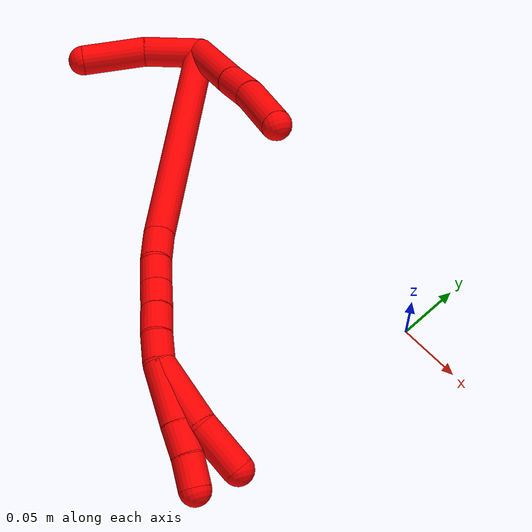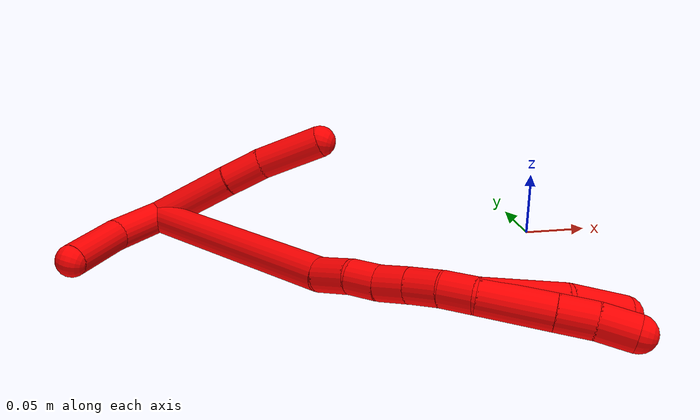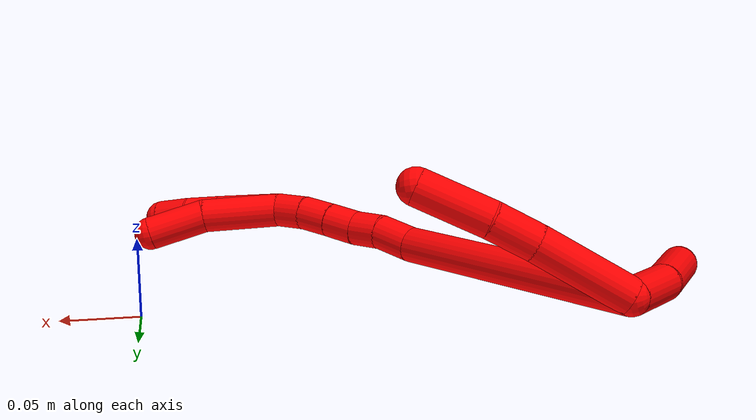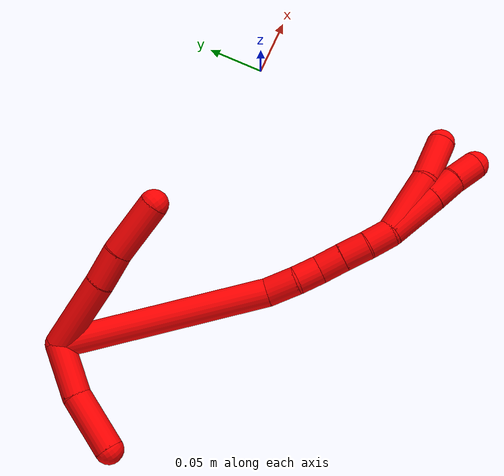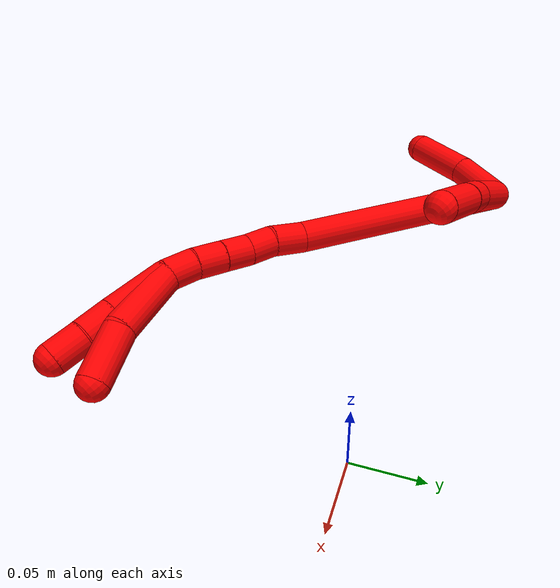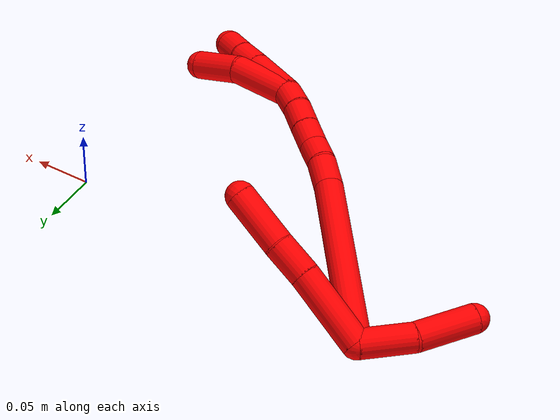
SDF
<sdf version="1.7">
 <world name="default">
  <model name="2">
   <static>0</static>
   <link name="2">
    <collision name="collision-cylinder-e_1_2_8">
     <pose>0.003643 0.022546 -0.024997 -2.40769 0.107813 -0.278951</pose>
     <geometry><cylinder><radius>0.0125</radius><length>0.067718</length></cylinder></geometry>
     <surface>
      <friction><ode><mu>1.16</mu><mu2>1.16</mu2><slip1>0</slip1><slip2>0</slip2></ode></friction>
      <contact><ode><kp>1e+06</kp><kd>1</kd><max_vel>0</max_vel><min_depth>0.001</min_depth></ode></contact>
     </surface>
    </collision>
    <visual name="visual-cylinder-e_1_2_8">
     <pose>0.003643 0.022546 -0.024997 -2.40769 0.107813 -0.278951</pose>
     <geometry><cylinder><radius>0.0125</radius><length>0.067718</length></cylinder></geometry>
     <material><ambient>1 0 0 1</ambient></material>
    </visual>
    <collision name="collision-cylinder-e_2_8_9">
     <pose>0.007918 0.055553 -0.061783 -2.41587 0.040011 -0.1053</pose>
     <geometry><cylinder><radius>0.0125</radius><length>0.031547</length></cylinder></geometry>
     <surface>
      <friction><ode><mu>1.16</mu><mu2>1.16</mu2><slip1>0</slip1><slip2>0</slip2></ode></friction>
      <contact><ode><kp>1e+06</kp><kd>1</kd><max_vel>0</max_vel><min_depth>0.001</min_depth></ode></contact>
     </surface>
    </collision>
    <visual name="visual-cylinder-e_2_8_9">
     <pose>0.007918 0.055553 -0.061783 -2.41587 0.040011 -0.1053</pose>
     <geometry><cylinder><radius>0.0125</radius><length>0.031547</length></cylinder></geometry>
     <material><ambient>1 0 0 1</ambient></material>
    </visual>
    <collision name="collision-cylinder-e_3_9_6">
     <pose>0.011098 0.080638 -0.094142 -2.52352 0.100649 -0.312938</pose>
     <geometry><cylinder><radius>0.0125</radius><length>0.050735</length></cylinder></geometry>
     <surface>
      <friction><ode><mu>1.16</mu><mu2>1.16</mu2><slip1>0</slip1><slip2>0</slip2></ode></friction>
      <contact><ode><kp>1e+06</kp><kd>1</kd><max_vel>0</max_vel><min_depth>0.001</min_depth></ode></contact>
     </surface>
    </collision>
    <visual name="visual-cylinder-e_3_9_6">
     <pose>0.011098 0.080638 -0.094142 -2.52352 0.100649 -0.312938</pose>
     <geometry><cylinder><radius>0.0125</radius><length>0.050735</length></cylinder></geometry>
     <material><ambient>1 0 0 1</ambient></material>
    </visual>
    <collision name="collision-cylinder-e_1_2_10">
     <pose>0.019276 -0.010522 0.008447 0.894331 0.960089 0.48938</pose>
     <geometry><cylinder><radius>0.0125</radius><length>0.047059</length></cylinder></geometry>
     <surface>
      <friction><ode><mu>1.16</mu><mu2>1.16</mu2><slip1>0</slip1><slip2>0</slip2></ode></friction>
      <contact><ode><kp>1e+06</kp><kd>1</kd><max_vel>0</max_vel><min_depth>0.001</min_depth></ode></contact>
     </surface>
    </collision>
    <visual name="visual-cylinder-e_1_2_10">
     <pose>0.019276 -0.010522 0.008447 0.894331 0.960089 0.48938</pose>
     <geometry><cylinder><radius>0.0125</radius><length>0.047059</length></cylinder></geometry>
     <material><ambient>1 0 0 1</ambient></material>
    </visual>
    <collision name="collision-cylinder-e_2_10_5">
     <pose>0.06239 -0.031841 0.020877 1.21743 1.121 0.824773</pose>
     <geometry><cylinder><radius>0.0125</radius><length>0.052941</length></cylinder></geometry>
     <surface>
      <friction><ode><mu>1.16</mu><mu2>1.16</mu2><slip1>0</slip1><slip2>0</slip2></ode></friction>
      <contact><ode><kp>1e+06</kp><kd>1</kd><max_vel>0</max_vel><min_depth>0.001</min_depth></ode></contact>
     </surface>
    </collision>
    <visual name="visual-cylinder-e_2_10_5">
     <pose>0.06239 -0.031841 0.020877 1.21743 1.121 0.824773</pose>
     <geometry><cylinder><radius>0.0125</radius><length>0.052941</length></cylinder></geometry>
     <material><ambient>1 0 0 1</ambient></material>
    </visual>
    <collision name="collision-cylinder-e_1_2_11">
     <pose>0.046022 0.001227 -0.078355 -3.12594 0.531017 -3.08403</pose>
     <geometry><cylinder><radius>0.0125</radius><length>0.181759</length></cylinder></geometry>
     <surface>
      <friction><ode><mu>1.16</mu><mu2>1.16</mu2><slip1>0</slip1><slip2>0</slip2></ode></friction>
      <contact><ode><kp>1e+06</kp><kd>1</kd><max_vel>0</max_vel><min_depth>0.001</min_depth></ode></contact>
     </surface>
    </collision>
    <visual name="visual-cylinder-e_1_2_11">
     <pose>0.046022 0.001227 -0.078355 -3.12594 0.531017 -3.08403</pose>
     <geometry><cylinder><radius>0.0125</radius><length>0.181759</length></cylinder></geometry>
     <material><ambient>1 0 0 1</ambient></material>
    </visual>
    <collision name="collision-cylinder-e_2_11_12">
     <pose>0.098508 0.005619 -0.168313 -2.87528 0.493096 -2.16337</pose>
     <geometry><cylinder><radius>0.0125</radius><length>0.027308</length></cylinder></geometry>
     <surface>
      <friction><ode><mu>1.16</mu><mu2>1.16</mu2><slip1>0</slip1><slip2>0</slip2></ode></friction>
      <contact><ode><kp>1e+06</kp><kd>1</kd><max_vel>0</max_vel><min_depth>0.001</min_depth></ode></contact>
     </surface>
    </collision>
    <visual name="visual-cylinder-e_2_11_12">
     <pose>0.098508 0.005619 -0.168313 -2.87528 0.493096 -2.16337</pose>
     <geometry><cylinder><radius>0.0125</radius><length>0.027308</length></cylinder></geometry>
     <material><ambient>1 0 0 1</ambient></material>
    </visual>
    <collision name="collision-cylinder-e_3_12_13">
     <pose>0.108601 0.009823 -0.189989 -3.03888 0.34426 -2.56662</pose>
     <geometry><cylinder><radius>0.0125</radius><length>0.021515</length></cylinder></geometry>
     <surface>
      <friction><ode><mu>1.16</mu><mu2>1.16</mu2><slip1>0</slip1><slip2>0</slip2></ode></friction>
      <contact><ode><kp>1e+06</kp><kd>1</kd><max_vel>0</max_vel><min_depth>0.001</min_depth></ode></contact>
     </surface>
    </collision>
    <visual name="visual-cylinder-e_3_12_13">
     <pose>0.108601 0.009823 -0.189989 -3.03888 0.34426 -2.56662</pose>
     <geometry><cylinder><radius>0.0125</radius><length>0.021515</length></cylinder></geometry>
     <material><ambient>1 0 0 1</ambient></material>
    </visual>
    <collision name="collision-cylinder-e_4_13_14">
     <pose>0.116382 0.013449 -0.210213 -2.89196 0.377182 -1.9785</pose>
     <geometry><cylinder><radius>0.0125</radius><length>0.022534</length></cylinder></geometry>
     <surface>
      <friction><ode><mu>1.16</mu><mu2>1.16</mu2><slip1>0</slip1><slip2>0</slip2></ode></friction>
      <contact><ode><kp>1e+06</kp><kd>1</kd><max_vel>0</max_vel><min_depth>0.001</min_depth></ode></contact>
     </surface>
    </collision>
    <visual name="visual-cylinder-e_4_13_14">
     <pose>0.116382 0.013449 -0.210213 -2.89196 0.377182 -1.9785</pose>
     <geometry><cylinder><radius>0.0125</radius><length>0.022534</length></cylinder></geometry>
     <material><ambient>1 0 0 1</ambient></material>
    </visual>
    <collision name="collision-cylinder-e_5_14_15">
     <pose>0.12498 0.018354 -0.230988 -2.92685 0.388346 -2.13879</pose>
     <geometry><cylinder><radius>0.0125</radius><length>0.0235</length></cylinder></geometry>
     <surface>
      <friction><ode><mu>1.16</mu><mu2>1.16</mu2><slip1>0</slip1><slip2>0</slip2></ode></friction>
      <contact><ode><kp>1e+06</kp><kd>1</kd><max_vel>0</max_vel><min_depth>0.001</min_depth></ode></contact>
     </surface>
    </collision>
    <visual name="visual-cylinder-e_5_14_15">
     <pose>0.12498 0.018354 -0.230988 -2.92685 0.388346 -2.13879</pose>
     <geometry><cylinder><radius>0.0125</radius><length>0.0235</length></cylinder></geometry>
     <material><ambient>1 0 0 1</ambient></material>
    </visual>
    <collision name="collision-cylinder-e_6_15_1">
     <pose>0.132679 0.022028 -0.252763 -3.02054 0.281594 -2.33349</pose>
     <geometry><cylinder><radius>0.0125</radius><length>0.023385</length></cylinder></geometry>
     <surface>
      <friction><ode><mu>1.16</mu><mu2>1.16</mu2><slip1>0</slip1><slip2>0</slip2></ode></friction>
      <contact><ode><kp>1e+06</kp><kd>1</kd><max_vel>0</max_vel><min_depth>0.001</min_depth></ode></contact>
     </surface>
    </collision>
    <visual name="visual-cylinder-e_6_15_1">
     <pose>0.132679 0.022028 -0.252763 -3.02054 0.281594 -2.33349</pose>
     <geometry><cylinder><radius>0.0125</radius><length>0.023385</length></cylinder></geometry>
     <material><ambient>1 0 0 1</ambient></material>
    </visual>
    <collision name="collision-cylinder-e_1_1_16">
     <pose>0.130227 0.029544 -0.291434 -2.9214 -0.199459 1.47133</pose>
     <geometry><cylinder><radius>0.0125</radius><length>0.057546</length></cylinder></geometry>
     <surface>
      <friction><ode><mu>1.16</mu><mu2>1.16</mu2><slip1>0</slip1><slip2>0</slip2></ode></friction>
      <contact><ode><kp>1e+06</kp><kd>1</kd><max_vel>0</max_vel><min_depth>0.001</min_depth></ode></contact>
     </surface>
    </collision>
    <visual name="visual-cylinder-e_1_1_16">
     <pose>0.130227 0.029544 -0.291434 -2.9214 -0.199459 1.47133</pose>
     <geometry><cylinder><radius>0.0125</radius><length>0.057546</length></cylinder></geometry>
     <material><ambient>1 0 0 1</ambient></material>
    </visual>
    <collision name="collision-cylinder-e_2_16_4">
     <pose>0.11609 0.036878 -0.3384 -3.0813 -0.408677 2.85259</pose>
     <geometry><cylinder><radius>0.0125</radius><length>0.042454</length></cylinder></geometry>
     <surface>
      <friction><ode><mu>1.16</mu><mu2>1.16</mu2><slip1>0</slip1><slip2>0</slip2></ode></friction>
      <contact><ode><kp>1e+06</kp><kd>1</kd><max_vel>0</max_vel><min_depth>0.001</min_depth></ode></contact>
     </surface>
    </collision>
    <visual name="visual-cylinder-e_2_16_4">
     <pose>0.11609 0.036878 -0.3384 -3.0813 -0.408677 2.85259</pose>
     <geometry><cylinder><radius>0.0125</radius><length>0.042454</length></cylinder></geometry>
     <material><ambient>1 0 0 1</ambient></material>
    </visual>
    <collision name="collision-cylinder-e_1_1_17">
     <pose>0.137547 0.025761 -0.288426 -3.04492 0.065642 -1.19261</pose>
     <geometry><cylinder><radius>0.0125</radius><length>0.049363</length></cylinder></geometry>
     <surface>
      <friction><ode><mu>1.16</mu><mu2>1.16</mu2><slip1>0</slip1><slip2>0</slip2></ode></friction>
      <contact><ode><kp>1e+06</kp><kd>1</kd><max_vel>0</max_vel><min_depth>0.001</min_depth></ode></contact>
     </surface>
    </collision>
    <visual name="visual-cylinder-e_1_1_17">
     <pose>0.137547 0.025761 -0.288426 -3.04492 0.065642 -1.19261</pose>
     <geometry><cylinder><radius>0.0125</radius><length>0.049363</length></cylinder></geometry>
     <material><ambient>1 0 0 1</ambient></material>
    </visual>
    <collision name="collision-cylinder-e_2_17_18">
     <pose>0.139612 0.029373 -0.325564 -3.04412 0.03518 -0.692305</pose>
     <geometry><cylinder><radius>0.0125</radius><length>0.025386</length></cylinder></geometry>
     <surface>
      <friction><ode><mu>1.16</mu><mu2>1.16</mu2><slip1>0</slip1><slip2>0</slip2></ode></friction>
      <contact><ode><kp>1e+06</kp><kd>1</kd><max_vel>0</max_vel><min_depth>0.001</min_depth></ode></contact>
     </surface>
    </collision>
    <visual name="visual-cylinder-e_2_17_18">
     <pose>0.139612 0.029373 -0.325564 -3.04412 0.03518 -0.692305</pose>
     <geometry><cylinder><radius>0.0125</radius><length>0.025386</length></cylinder></geometry>
     <material><ambient>1 0 0 1</ambient></material>
    </visual>
    <collision name="collision-cylinder-e_3_18_3">
     <pose>0.141187 0.030607 -0.350764 3.14151 0.089448 3.13969</pose>
     <geometry><cylinder><radius>0.0125</radius><length>0.025251</length></cylinder></geometry>
     <surface>
      <friction><ode><mu>1.16</mu><mu2>1.16</mu2><slip1>0</slip1><slip2>0</slip2></ode></friction>
      <contact><ode><kp>1e+06</kp><kd>1</kd><max_vel>0</max_vel><min_depth>0.001</min_depth></ode></contact>
     </surface>
    </collision>
    <visual name="visual-cylinder-e_3_18_3">
     <pose>0.141187 0.030607 -0.350764 3.14151 0.089448 3.13969</pose>
     <geometry><cylinder><radius>0.0125</radius><length>0.025251</length></cylinder></geometry>
     <material><ambient>1 0 0 1</ambient></material>
    </visual>
    <collision name="collision-sphere-3">
     <pose>0.142315 0.030606 -0.363339 0 -0 0</pose>
     <geometry><sphere><radius>0.0125</radius></sphere></geometry>
     <surface>
      <friction><ode><mu>1.16</mu><mu2>1.16</mu2><slip1>0</slip1><slip2>0</slip2></ode></friction>
      <contact><ode><kp>1e+06</kp><kd>1</kd><max_vel>0</max_vel><min_depth>0.001</min_depth></ode></contact>
     </surface>
    </collision>
    <visual name="visual-sphere-3">
     <pose>0.142315 0.030606 -0.363339 0 -0 0</pose>
     <geometry><sphere><radius>0.0125</radius></sphere></geometry>
     <material><ambient>1 0 0 1</ambient></material>
    </visual>
    <collision name="collision-sphere-5">
     <pose>0.086228 -0.042639 0.02486 0 -0 0</pose>
     <geometry><sphere><radius>0.0125</radius></sphere></geometry>
     <surface>
      <friction><ode><mu>1.16</mu><mu2>1.16</mu2><slip1>0</slip1><slip2>0</slip2></ode></friction>
      <contact><ode><kp>1e+06</kp><kd>1</kd><max_vel>0</max_vel><min_depth>0.001</min_depth></ode></contact>
     </surface>
    </collision>
    <visual name="visual-sphere-5">
     <pose>0.086228 -0.042639 0.02486 0 -0 0</pose>
     <geometry><sphere><radius>0.0125</radius></sphere></geometry>
     <material><ambient>1 0 0 1</ambient></material>
    </visual>
    <collision name="collision-sphere-10">
     <pose>0.038552 -0.021043 0.016894 0 -0 0</pose>
     <geometry><sphere><radius>0.0125</radius></sphere></geometry>
     <surface>
      <friction><ode><mu>1.16</mu><mu2>1.16</mu2><slip1>0</slip1><slip2>0</slip2></ode></friction>
      <contact><ode><kp>1e+06</kp><kd>1</kd><max_vel>0</max_vel><min_depth>0.001</min_depth></ode></contact>
     </surface>
    </collision>
    <visual name="visual-sphere-10">
     <pose>0.038552 -0.021043 0.016894 0 -0 0</pose>
     <geometry><sphere><radius>0.0125</radius></sphere></geometry>
     <material><ambient>1 0 0 1</ambient></material>
    </visual>
    <collision name="collision-sphere-6">
     <pose>0.013646 0.095263 -0.114712 0 -0 0</pose>
     <geometry><sphere><radius>0.0125</radius></sphere></geometry>
     <surface>
      <friction><ode><mu>1.16</mu><mu2>1.16</mu2><slip1>0</slip1><slip2>0</slip2></ode></friction>
      <contact><ode><kp>1e+06</kp><kd>1</kd><max_vel>0</max_vel><min_depth>0.001</min_depth></ode></contact>
     </surface>
    </collision>
    <visual name="visual-sphere-6">
     <pose>0.013646 0.095263 -0.114712 0 -0 0</pose>
     <geometry><sphere><radius>0.0125</radius></sphere></geometry>
     <material><ambient>1 0 0 1</ambient></material>
    </visual>
    <collision name="collision-sphere-9">
     <pose>0.008549 0.066013 -0.073572 0 -0 0</pose>
     <geometry><sphere><radius>0.0125</radius></sphere></geometry>
     <surface>
      <friction><ode><mu>1.16</mu><mu2>1.16</mu2><slip1>0</slip1><slip2>0</slip2></ode></friction>
      <contact><ode><kp>1e+06</kp><kd>1</kd><max_vel>0</max_vel><min_depth>0.001</min_depth></ode></contact>
     </surface>
    </collision>
    <visual name="visual-sphere-9">
     <pose>0.008549 0.066013 -0.073572 0 -0 0</pose>
     <geometry><sphere><radius>0.0125</radius></sphere></geometry>
     <material><ambient>1 0 0 1</ambient></material>
    </visual>
    <collision name="collision-sphere-2">
     <geometry><sphere><radius>0.0125</radius></sphere></geometry>
     <surface>
      <friction><ode><mu>1.16</mu><mu2>1.16</mu2><slip1>0</slip1><slip2>0</slip2></ode></friction>
      <contact><ode><kp>1e+06</kp><kd>1</kd><max_vel>0</max_vel><min_depth>0.001</min_depth></ode></contact>
     </surface>
    </collision>
    <visual name="visual-sphere-2">
     <geometry><sphere><radius>0.0125</radius></sphere></geometry>
     <material><ambient>1 0 0 1</ambient></material>
    </visual>
    <collision name="collision-sphere-8">
     <pose>0.007287 0.045092 -0.049994 0 -0 0</pose>
     <geometry><sphere><radius>0.0125</radius></sphere></geometry>
     <surface>
      <friction><ode><mu>1.16</mu><mu2>1.16</mu2><slip1>0</slip1><slip2>0</slip2></ode></friction>
      <contact><ode><kp>1e+06</kp><kd>1</kd><max_vel>0</max_vel><min_depth>0.001</min_depth></ode></contact>
     </surface>
    </collision>
    <visual name="visual-sphere-8">
     <pose>0.007287 0.045092 -0.049994 0 -0 0</pose>
     <geometry><sphere><radius>0.0125</radius></sphere></geometry>
     <material><ambient>1 0 0 1</ambient></material>
    </visual>
    <collision name="collision-sphere-11">
     <pose>0.092045 0.002454 -0.15671 0 -0 0</pose>
     <geometry><sphere><radius>0.0125</radius></sphere></geometry>
     <surface>
      <friction><ode><mu>1.16</mu><mu2>1.16</mu2><slip1>0</slip1><slip2>0</slip2></ode></friction>
      <contact><ode><kp>1e+06</kp><kd>1</kd><max_vel>0</max_vel><min_depth>0.001</min_depth></ode></contact>
     </surface>
    </collision>
    <visual name="visual-sphere-11">
     <pose>0.092045 0.002454 -0.15671 0 -0 0</pose>
     <geometry><sphere><radius>0.0125</radius></sphere></geometry>
     <material><ambient>1 0 0 1</ambient></material>
    </visual>
    <collision name="collision-sphere-12">
     <pose>0.104971 0.008784 -0.179917 0 -0 0</pose>
     <geometry><sphere><radius>0.0125</radius></sphere></geometry>
     <surface>
      <friction><ode><mu>1.16</mu><mu2>1.16</mu2><slip1>0</slip1><slip2>0</slip2></ode></friction>
      <contact><ode><kp>1e+06</kp><kd>1</kd><max_vel>0</max_vel><min_depth>0.001</min_depth></ode></contact>
     </surface>
    </collision>
    <visual name="visual-sphere-12">
     <pose>0.104971 0.008784 -0.179917 0 -0 0</pose>
     <geometry><sphere><radius>0.0125</radius></sphere></geometry>
     <material><ambient>1 0 0 1</ambient></material>
    </visual>
    <collision name="collision-sphere-13">
     <pose>0.112232 0.010861 -0.200062 0 -0 0</pose>
     <geometry><sphere><radius>0.0125</radius></sphere></geometry>
     <surface>
      <friction><ode><mu>1.16</mu><mu2>1.16</mu2><slip1>0</slip1><slip2>0</slip2></ode></friction>
      <contact><ode><kp>1e+06</kp><kd>1</kd><max_vel>0</max_vel><min_depth>0.001</min_depth></ode></contact>
     </surface>
    </collision>
    <visual name="visual-sphere-13">
     <pose>0.112232 0.010861 -0.200062 0 -0 0</pose>
     <geometry><sphere><radius>0.0125</radius></sphere></geometry>
     <material><ambient>1 0 0 1</ambient></material>
    </visual>
    <collision name="collision-sphere-14">
     <pose>0.120531 0.016037 -0.220363 0 -0 0</pose>
     <geometry><sphere><radius>0.0125</radius></sphere></geometry>
     <surface>
      <friction><ode><mu>1.16</mu><mu2>1.16</mu2><slip1>0</slip1><slip2>0</slip2></ode></friction>
      <contact><ode><kp>1e+06</kp><kd>1</kd><max_vel>0</max_vel><min_depth>0.001</min_depth></ode></contact>
     </surface>
    </collision>
    <visual name="visual-sphere-14">
     <pose>0.120531 0.016037 -0.220363 0 -0 0</pose>
     <geometry><sphere><radius>0.0125</radius></sphere></geometry>
     <material><ambient>1 0 0 1</ambient></material>
    </visual>
    <collision name="collision-sphere-15">
     <pose>0.12943 0.020672 -0.241613 0 -0 0</pose>
     <geometry><sphere><radius>0.0125</radius></sphere></geometry>
     <surface>
      <friction><ode><mu>1.16</mu><mu2>1.16</mu2><slip1>0</slip1><slip2>0</slip2></ode></friction>
      <contact><ode><kp>1e+06</kp><kd>1</kd><max_vel>0</max_vel><min_depth>0.001</min_depth></ode></contact>
     </surface>
    </collision>
    <visual name="visual-sphere-15">
     <pose>0.12943 0.020672 -0.241613 0 -0 0</pose>
     <geometry><sphere><radius>0.0125</radius></sphere></geometry>
     <material><ambient>1 0 0 1</ambient></material>
    </visual>
    <collision name="collision-sphere-1">
     <pose>0.135928 0.023384 -0.263913 0 -0 0</pose>
     <geometry><sphere><radius>0.0125</radius></sphere></geometry>
     <surface>
      <friction><ode><mu>1.16</mu><mu2>1.16</mu2><slip1>0</slip1><slip2>0</slip2></ode></friction>
      <contact><ode><kp>1e+06</kp><kd>1</kd><max_vel>0</max_vel><min_depth>0.001</min_depth></ode></contact>
     </surface>
    </collision>
    <visual name="visual-sphere-1">
     <pose>0.135928 0.023384 -0.263913 0 -0 0</pose>
     <geometry><sphere><radius>0.0125</radius></sphere></geometry>
     <material><ambient>1 0 0 1</ambient></material>
    </visual>
    <collision name="collision-sphere-18">
     <pose>0.140059 0.030608 -0.338189 0 -0 0</pose>
     <geometry><sphere><radius>0.0125</radius></sphere></geometry>
     <surface>
      <friction><ode><mu>1.16</mu><mu2>1.16</mu2><slip1>0</slip1><slip2>0</slip2></ode></friction>
      <contact><ode><kp>1e+06</kp><kd>1</kd><max_vel>0</max_vel><min_depth>0.001</min_depth></ode></contact>
     </surface>
    </collision>
    <visual name="visual-sphere-18">
     <pose>0.140059 0.030608 -0.338189 0 -0 0</pose>
     <geometry><sphere><radius>0.0125</radius></sphere></geometry>
     <material><ambient>1 0 0 1</ambient></material>
    </visual>
    <collision name="collision-sphere-16">
     <pose>0.124526 0.035704 -0.318956 0 -0 0</pose>
     <geometry><sphere><radius>0.0125</radius></sphere></geometry>
     <surface>
      <friction><ode><mu>1.16</mu><mu2>1.16</mu2><slip1>0</slip1><slip2>0</slip2></ode></friction>
      <contact><ode><kp>1e+06</kp><kd>1</kd><max_vel>0</max_vel><min_depth>0.001</min_depth></ode></contact>
     </surface>
    </collision>
    <visual name="visual-sphere-16">
     <pose>0.124526 0.035704 -0.318956 0 -0 0</pose>
     <geometry><sphere><radius>0.0125</radius></sphere></geometry>
     <material><ambient>1 0 0 1</ambient></material>
    </visual>
    <collision name="collision-sphere-4">
     <pose>0.107655 0.038052 -0.357843 0 -0 0</pose>
     <geometry><sphere><radius>0.0125</radius></sphere></geometry>
     <surface>
      <friction><ode><mu>1.16</mu><mu2>1.16</mu2><slip1>0</slip1><slip2>0</slip2></ode></friction>
      <contact><ode><kp>1e+06</kp><kd>1</kd><max_vel>0</max_vel><min_depth>0.001</min_depth></ode></contact>
     </surface>
    </collision>
    <visual name="visual-sphere-4">
     <pose>0.107655 0.038052 -0.357843 0 -0 0</pose>
     <geometry><sphere><radius>0.0125</radius></sphere></geometry>
     <material><ambient>1 0 0 1</ambient></material>
    </visual>
    <collision name="collision-sphere-17">
     <pose>0.139166 0.028139 -0.312939 0 -0 0</pose>
     <geometry><sphere><radius>0.0125</radius></sphere></geometry>
     <surface>
      <friction><ode><mu>1.16</mu><mu2>1.16</mu2><slip1>0</slip1><slip2>0</slip2></ode></friction>
      <contact><ode><kp>1e+06</kp><kd>1</kd><max_vel>0</max_vel><min_depth>0.001</min_depth></ode></contact>
     </surface>
    </collision>
    <visual name="visual-sphere-17">
     <pose>0.139166 0.028139 -0.312939 0 -0 0</pose>
     <geometry><sphere><radius>0.0125</radius></sphere></geometry>
     <material><ambient>1 0 0 1</ambient></material>
    </visual>
    <inertial>
     <pose>0.071527 0.017444 -0.144551 0 -0 0</pose>
     <mass>0.75</mass>
     <inertia>
      <ixx>-0.000404</ixx>
      <ixy>0</ixy>
      <ixz>0</ixz>
      <iyy>0.000483</iyy>
      <iyz>0</iyz>
      <izz>-0.000357</izz>
     </inertia>
    </inertial>
   </link>
   <pose>-0.299252 0.054708 0.013914 1.34183 -0.36845 -1.91393</pose>
  </model>
 </world>
</sdf>
